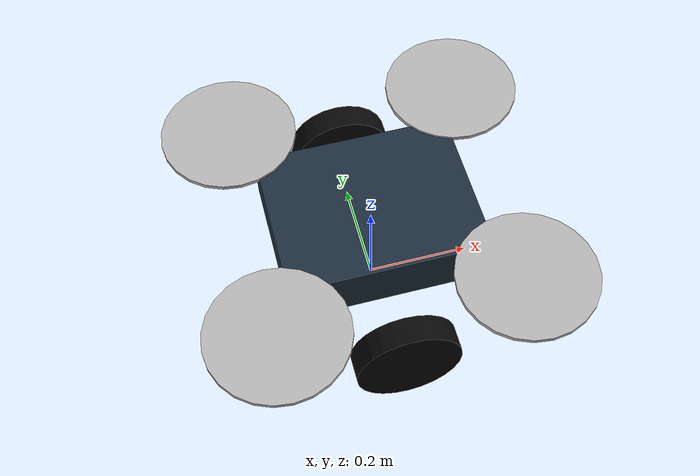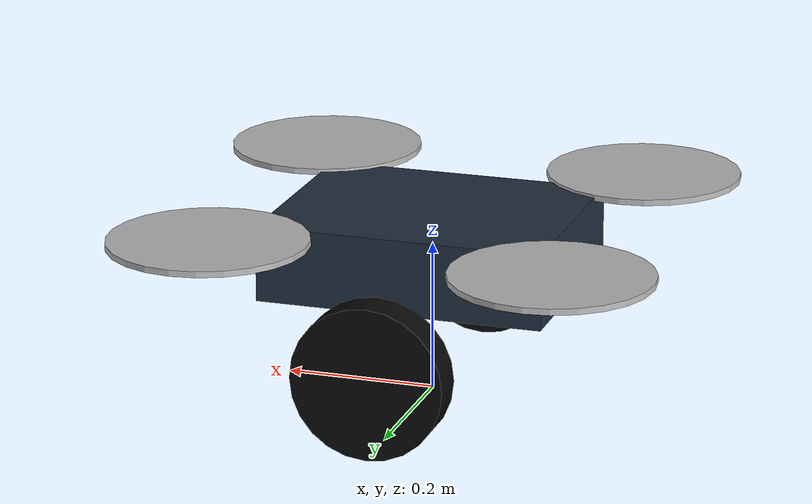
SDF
<?xml version="1.0" encoding="UTF-8"?>
<sdf version="1.9">
  <model name="flying_car">
    <static>false</static>
    <self_collide>false</self_collide>

    <link name="base_link">
      <pose>0 0 0.20 0 0 0</pose>
      <inertial>
        <mass>2.5</mass>
        <inertia>
          <ixx>0.075</ixx><iyy>0.075</iyy><izz>0.12</izz>
          <ixy>0</ixy><ixz>0</ixz><iyz>0</iyz>
        </inertia>
      </inertial>
      <collision name="body_collision">
        <geometry><box><size>0.38 0.30 0.10</size></box></geometry>
      </collision>
      <visual name="body_visual">
        <geometry><box><size>0.38 0.30 0.10</size></box></geometry>
        <material><diffuse>0.12 0.18 0.24 1</diffuse></material>
      </visual>
      <sensor name="imu_sensor" type="imu">
        <always_on>true</always_on><update_rate>250</update_rate>
      </sensor>
      <sensor name="navsat_sensor" type="navsat">
        <always_on>true</always_on><update_rate>30</update_rate>
      </sensor>
      <sensor name="magnetometer_sensor" type="magnetometer">
        <always_on>true</always_on><update_rate>100</update_rate>
      </sensor>
      <sensor name="air_pressure_sensor" type="air_pressure">
        <always_on>true</always_on><update_rate>50</update_rate>
      </sensor>
    </link>

    <link name="rotor_0">
      <pose>0.225 0.225 0.25 0 0 0</pose>
      <inertial><mass>0.02</mass><inertia><ixx>1e-4</ixx><iyy>1e-4</iyy><izz>2e-4</izz></inertia></inertial>
      <visual name="rotor_0_visual"><geometry><cylinder><radius>0.13</radius><length>0.008</length></cylinder></geometry></visual>
    </link>
    <link name="rotor_1">
      <pose>-0.225 -0.225 0.25 0 0 0</pose>
      <inertial><mass>0.02</mass><inertia><ixx>1e-4</ixx><iyy>1e-4</iyy><izz>2e-4</izz></inertia></inertial>
      <visual name="rotor_1_visual"><geometry><cylinder><radius>0.13</radius><length>0.008</length></cylinder></geometry></visual>
    </link>
    <link name="rotor_2">
      <pose>0.225 -0.225 0.25 0 0 0</pose>
      <inertial><mass>0.02</mass><inertia><ixx>1e-4</ixx><iyy>1e-4</iyy><izz>2e-4</izz></inertia></inertial>
      <visual name="rotor_2_visual"><geometry><cylinder><radius>0.13</radius><length>0.008</length></cylinder></geometry></visual>
    </link>
    <link name="rotor_3">
      <pose>-0.225 0.225 0.25 0 0 0</pose>
      <inertial><mass>0.02</mass><inertia><ixx>1e-4</ixx><iyy>1e-4</iyy><izz>2e-4</izz></inertia></inertial>
      <visual name="rotor_3_visual"><geometry><cylinder><radius>0.13</radius><length>0.008</length></cylinder></geometry></visual>
    </link>

    <joint name="rotor_0_joint" type="revolute"><parent>base_link</parent><child>rotor_0</child><axis><xyz>0 0 1</xyz><limit><lower>-1e16</lower><upper>1e16</upper></limit></axis></joint>
    <joint name="rotor_1_joint" type="revolute"><parent>base_link</parent><child>rotor_1</child><axis><xyz>0 0 1</xyz><limit><lower>-1e16</lower><upper>1e16</upper></limit></axis></joint>
    <joint name="rotor_2_joint" type="revolute"><parent>base_link</parent><child>rotor_2</child><axis><xyz>0 0 1</xyz><limit><lower>-1e16</lower><upper>1e16</upper></limit></axis></joint>
    <joint name="rotor_3_joint" type="revolute"><parent>base_link</parent><child>rotor_3</child><axis><xyz>0 0 1</xyz><limit><lower>-1e16</lower><upper>1e16</upper></limit></axis></joint>

    <link name="left_wheel">
      <pose>0 0.25 0.10 1.57079632679 0 0</pose>
      <inertial><mass>0.15</mass><inertia><ixx>4e-4</ixx><iyy>4e-4</iyy><izz>4e-4</izz></inertia></inertial>
      <collision name="left_wheel_collision">
        <geometry><cylinder><radius>0.10</radius><length>0.05</length></cylinder></geometry>
        <surface><friction><ode><mu>1.2</mu><mu2>0.8</mu2><fdir1>1 0 0</fdir1></ode></friction></surface>
      </collision>
      <visual name="left_wheel_visual"><geometry><cylinder><radius>0.10</radius><length>0.05</length></cylinder></geometry><material><diffuse>0.03 0.03 0.03 1</diffuse></material></visual>
    </link>
    <link name="right_wheel">
      <pose>0 -0.25 0.10 1.57079632679 0 0</pose>
      <inertial><mass>0.15</mass><inertia><ixx>4e-4</ixx><iyy>4e-4</iyy><izz>4e-4</izz></inertia></inertial>
      <collision name="right_wheel_collision">
        <geometry><cylinder><radius>0.10</radius><length>0.05</length></cylinder></geometry>
        <surface><friction><ode><mu>1.2</mu><mu2>0.8</mu2><fdir1>1 0 0</fdir1></ode></friction></surface>
      </collision>
      <visual name="right_wheel_visual"><geometry><cylinder><radius>0.10</radius><length>0.05</length></cylinder></geometry><material><diffuse>0.03 0.03 0.03 1</diffuse></material></visual>
    </link>
    <joint name="left_wheel_joint" type="revolute">
      <parent>base_link</parent><child>left_wheel</child>
      <axis><xyz expressed_in="__model__">0 1 0</xyz><limit><lower>-1e16</lower><upper>1e16</upper></limit></axis>
    </joint>
    <joint name="right_wheel_joint" type="revolute">
      <parent>base_link</parent><child>right_wheel</child>
      <axis><xyz expressed_in="__model__">0 1 0</xyz><limit><lower>-1e16</lower><upper>1e16</upper></limit></axis>
    </joint>

    <plugin filename="gz-sim-multicopter-motor-model-system" name="gz::sim::systems::MulticopterMotorModel">
      <jointName>rotor_0_joint</jointName><linkName>rotor_0</linkName><turningDirection>ccw</turningDirection>
      <timeConstantUp>0.0125</timeConstantUp><timeConstantDown>0.025</timeConstantDown><maxRotVelocity>1000</maxRotVelocity>
      <motorConstant>8.54858e-06</motorConstant><momentConstant>0.016</momentConstant><commandSubTopic>command/motor_speed</commandSubTopic><motorNumber>0</motorNumber>
      <rotorDragCoefficient>8.06428e-05</rotorDragCoefficient><rollingMomentCoefficient>1e-06</rollingMomentCoefficient><rotorVelocitySlowdownSim>10</rotorVelocitySlowdownSim><motorType>velocity</motorType>
    </plugin>
    <plugin filename="gz-sim-multicopter-motor-model-system" name="gz::sim::systems::MulticopterMotorModel">
      <jointName>rotor_1_joint</jointName><linkName>rotor_1</linkName><turningDirection>ccw</turningDirection>
      <timeConstantUp>0.0125</timeConstantUp><timeConstantDown>0.025</timeConstantDown><maxRotVelocity>1000</maxRotVelocity>
      <motorConstant>8.54858e-06</motorConstant><momentConstant>0.016</momentConstant><commandSubTopic>command/motor_speed</commandSubTopic><motorNumber>1</motorNumber>
      <rotorDragCoefficient>8.06428e-05</rotorDragCoefficient><rollingMomentCoefficient>1e-06</rollingMomentCoefficient><rotorVelocitySlowdownSim>10</rotorVelocitySlowdownSim><motorType>velocity</motorType>
    </plugin>
    <plugin filename="gz-sim-multicopter-motor-model-system" name="gz::sim::systems::MulticopterMotorModel">
      <jointName>rotor_2_joint</jointName><linkName>rotor_2</linkName><turningDirection>cw</turningDirection>
      <timeConstantUp>0.0125</timeConstantUp><timeConstantDown>0.025</timeConstantDown><maxRotVelocity>1000</maxRotVelocity>
      <motorConstant>8.54858e-06</motorConstant><momentConstant>0.016</momentConstant><commandSubTopic>command/motor_speed</commandSubTopic><motorNumber>2</motorNumber>
      <rotorDragCoefficient>8.06428e-05</rotorDragCoefficient><rollingMomentCoefficient>1e-06</rollingMomentCoefficient><rotorVelocitySlowdownSim>10</rotorVelocitySlowdownSim><motorType>velocity</motorType>
    </plugin>
    <plugin filename="gz-sim-multicopter-motor-model-system" name="gz::sim::systems::MulticopterMotorModel">
      <jointName>rotor_3_joint</jointName><linkName>rotor_3</linkName><turningDirection>cw</turningDirection>
      <timeConstantUp>0.0125</timeConstantUp><timeConstantDown>0.025</timeConstantDown><maxRotVelocity>1000</maxRotVelocity>
      <motorConstant>8.54858e-06</motorConstant><momentConstant>0.016</momentConstant><commandSubTopic>command/motor_speed</commandSubTopic><motorNumber>3</motorNumber>
      <rotorDragCoefficient>8.06428e-05</rotorDragCoefficient><rollingMomentCoefficient>1e-06</rollingMomentCoefficient><rotorVelocitySlowdownSim>10</rotorVelocitySlowdownSim><motorType>velocity</motorType>
    </plugin>

    <plugin filename="gz-sim-joint-controller-system" name="gz::sim::systems::JointController">
      <joint_name>left_wheel_joint</joint_name><sub_topic>command/motor_speed</sub_topic><use_actuator_msg>true</use_actuator_msg><actuator_number>0</actuator_number><p_gain>10</p_gain>
    </plugin>
    <plugin filename="gz-sim-joint-controller-system" name="gz::sim::systems::JointController">
      <joint_name>right_wheel_joint</joint_name><sub_topic>command/motor_speed</sub_topic><use_actuator_msg>true</use_actuator_msg><actuator_number>1</actuator_number><p_gain>10</p_gain>
    </plugin>
    <plugin filename="gz-sim-joint-state-publisher-system" name="gz::sim::systems::JointStatePublisher">
      <joint_name>left_wheel_joint</joint_name><joint_name>right_wheel_joint</joint_name>
    </plugin>
  </model>
</sdf>
